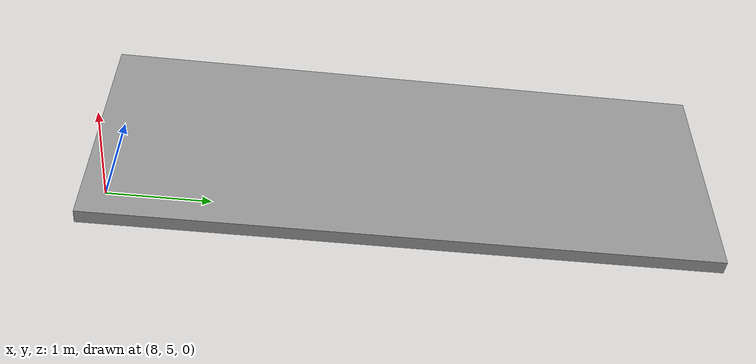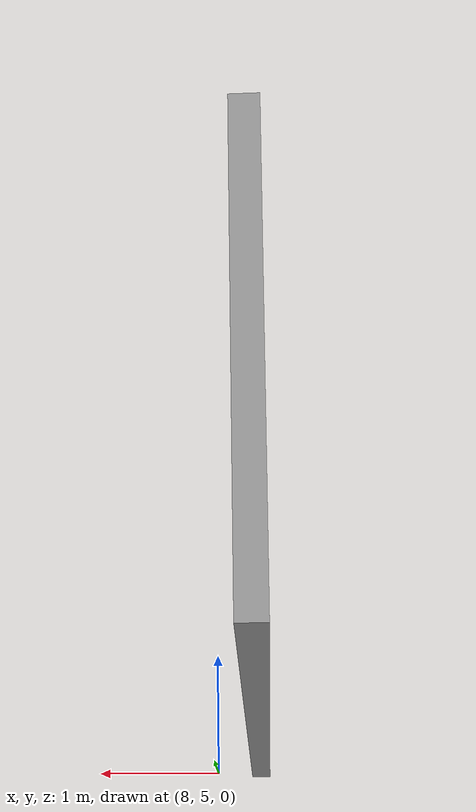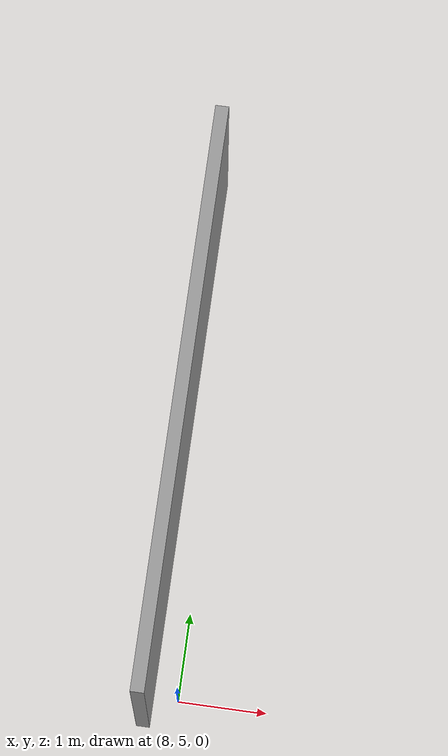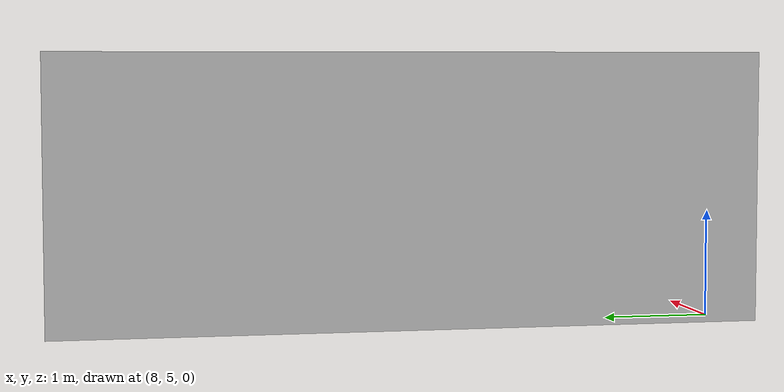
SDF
<?xml version='1.0'?>
<sdf version='1.6'>
  <model name='garage_wall'>
    <pose frame=''>7.64594 7.91971 0 0 -0 0</pose>
    <link name='Wall_5'>
      <collision name='Wall_5_Collision'>
        <geometry>
          <box>
            <size>6.5 0.15 2.5</size>
          </box>
        </geometry>
        <pose frame=''>0 0 1.25 0 -0 0</pose>
      </collision>
      <visual name='Wall_5_Visual'>
        <pose frame=''>0 0 1.25 0 -0 0</pose>
        <geometry>
          <box>
            <size>6.5 0.15 2.5</size>
          </box>
        </geometry>
        <material>
          <script>
            <uri>file://media/materials/scripts/gazebo.material</uri>
            <name>Gazebo/Grey</name>
          </script>
          <ambient>1 1 1 1</ambient>
        </material>
        <meta>
          <layer>0</layer>
        </meta>
      </visual>
      <pose frame=''>0 -0 0 0 -0 -1.5708</pose>
    </link>
    <static>1</static>
  </model>
</sdf>
